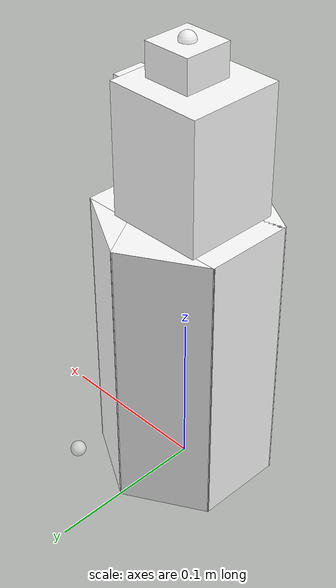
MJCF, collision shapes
<mujoco model="jug_a01">
  <default>
    <default class="visual">
      <geom group="1" type="mesh" contype="0" conaffinity="0" density="100"/>
    </default>
    <default class="collision">
      <geom group="0" type="mesh" density="100" solimp="0.95 0.98 0.001" solref="0.004 1" rgba="1 1 1 0.25"/>
    </default>
  </default>
  <asset>
    <texture type="2d" name="Jug_A" file="textures/Jug_A.png"/>
    <material name="opaque__plastic__utilityjug_translucent.001" texture="Jug_A" specular="0.5" shininess="0.25"/>
    <mesh file="meshes/jug_a01.obj" name="jug_a01"/>
  </asset>
  <worldbody>
    <body>
      <body name="object">
        <geom material="opaque__plastic__utilityjug_translucent.001" mesh="jug_a01" class="visual"/>
        <geom type="box" pos="0 0 0.09" quat="1 0 0 0" size="0.048 0.028 0.09" class="collision"/>
        <geom type="box" pos="0 0 0.09" quat="0.5 0 0 0.8660254" size="0.048 0.028 0.09" class="collision"/>
        <geom type="box" pos="0 0 0.09" quat="-0.5 0 0 0.8660254" size="0.048 0.028 0.09" class="collision"/>
        <geom type="box" pos="-0.005 0 0.2" size="0.03 0.03 0.06" class="collision"/>
        <geom type="box" pos="0.025 0 0.2" size="0.02 0.01 0.05" class="collision"/>
        <geom type="box" pos="0 0 0.27" size="0.015 0.015 0.01" class="collision"/>
      </body>
      <site name="bottom_site" pos="0 0 8.7e-05" rgba="1 1 1 0.5" size="0.005"/>
      <site name="top_site" pos="0 0 0.280272" rgba="1 1 1 0.5" size="0.005"/>
      <site name="horizontal_radius_site" pos="0.048308 0.048283 0" rgba="1 1 1 0.5" size="0.005"/>
    </body>
  </worldbody>
</mujoco>
